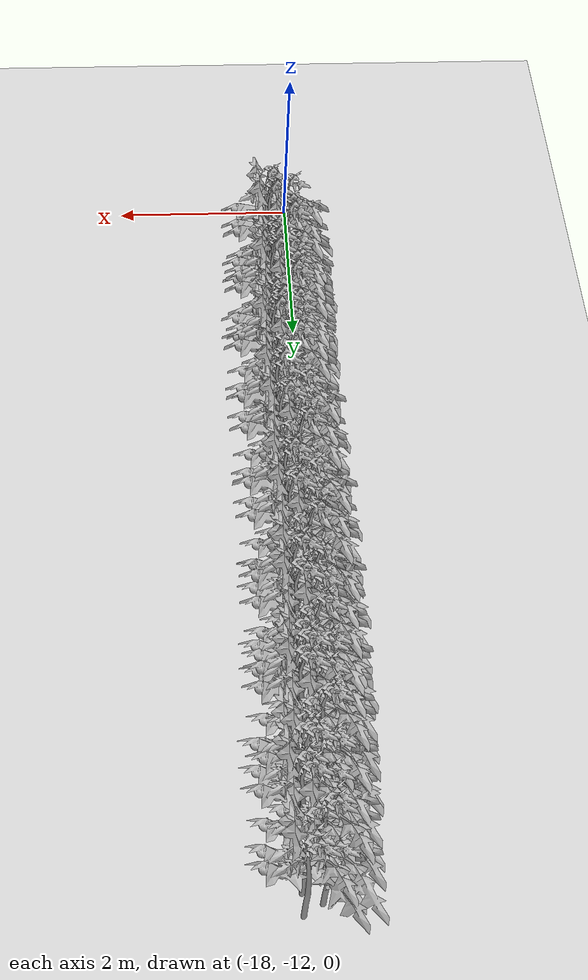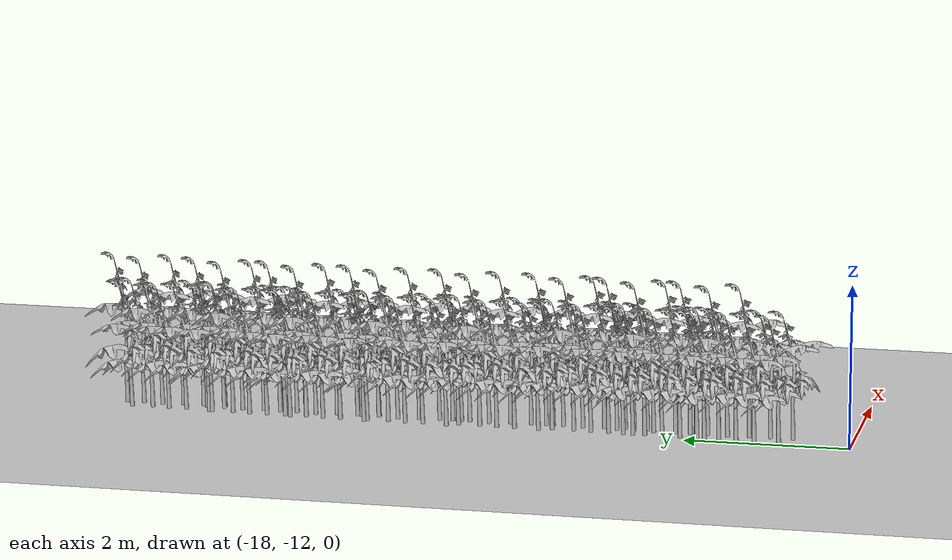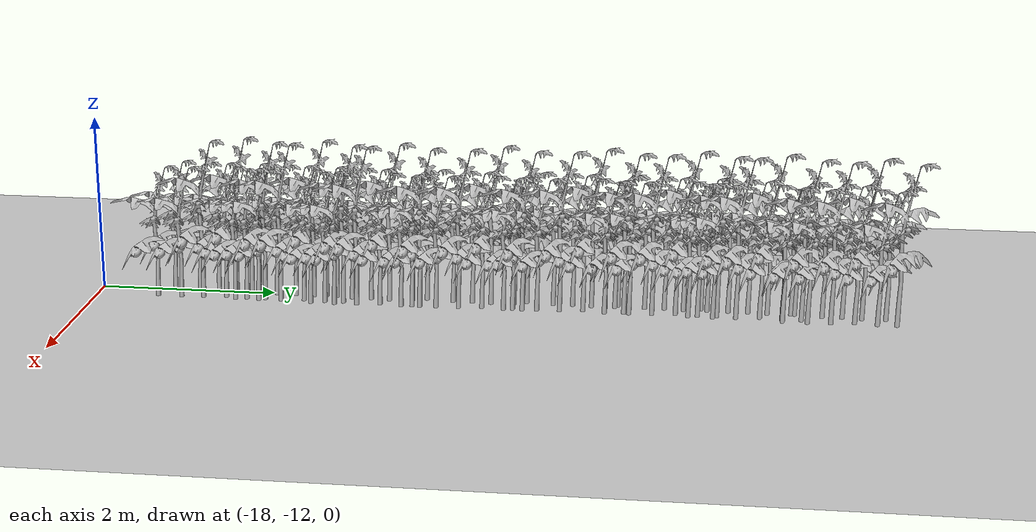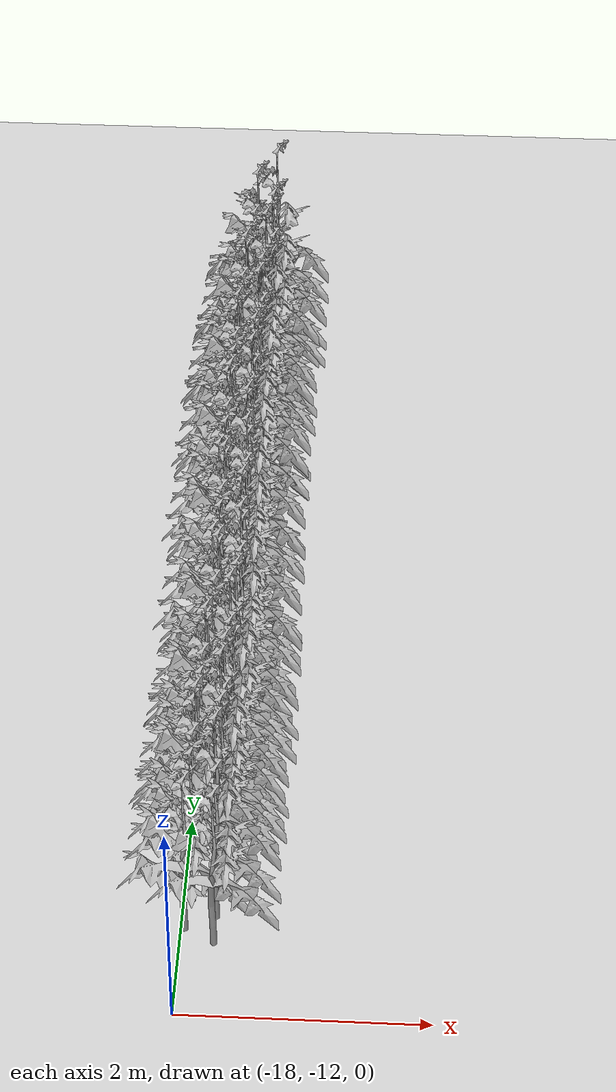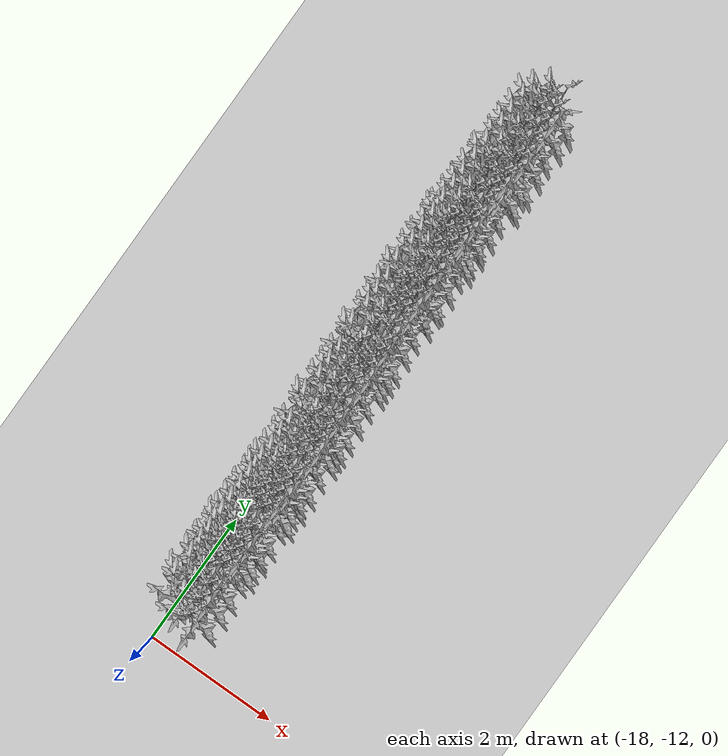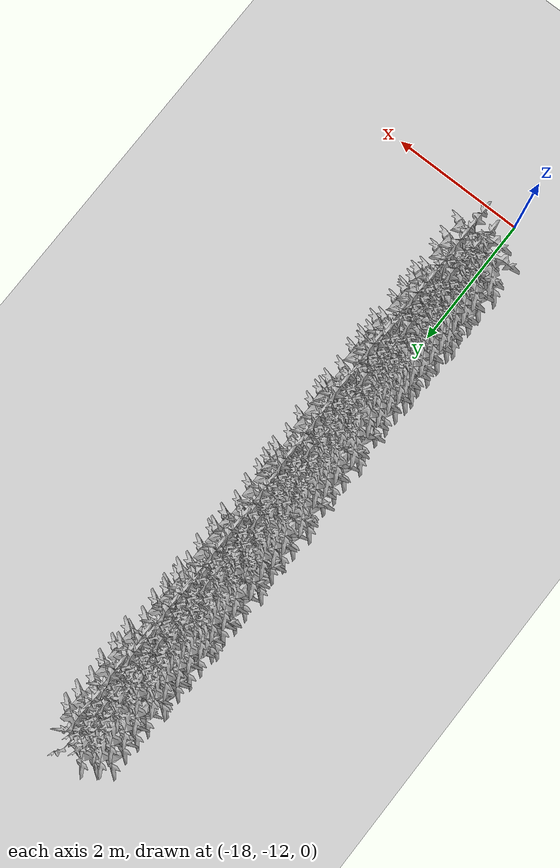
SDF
<sdf version="1.6">
 <world name="default">
  <model name="ground_plane">
   <static>1</static>
   <link name="link">
    <collision name="collision">
     <geometry><plane><normal>0 0 1</normal><size>100 100</size></plane></geometry>
     <surface>
      <contact><collide_bitmask>65535</collide_bitmask></contact>
      <friction><ode><mu>100</mu><mu2>50</mu2></ode></friction>
     </surface>
    </collision>
    <visual name="visual">
     <cast_shadows>0</cast_shadows>
     <geometry><plane><normal>0 0 1</normal><size>100 100</size></plane></geometry>
     <material>
      <script><uri>file://media/materials/scripts/gazebo.material</uri><name>Gazebo/Grey</name></script>
     </material>
    </visual>
   </link>
  </model>
  <model name="Front_Plant_1_1">
   <model name="tomato_plant_medium">
    <static>1</static>
    <link name="link">
     <collision name="collision">
      <pose>0 0 0 1.5708 -0 0</pose>
      <geometry><mesh><scale>0.5 0.5 0.5</scale><uri>model://stick/meshes/stick.dae</uri></mesh></geometry>
     </collision>
     <visual name="visual">
      <geometry>
       <mesh><scale>5e-06 5e-06 6e-06</scale><uri>model://tomato_plant_medium/meshes/tomato-plant.dae</uri></mesh>
      </geometry>
     </visual>
    </link>
    <pose>0.087453 -0.595994 0.012396 0 -0 0</pose>
   </model>
   <model name="tomato_plant_medium_0">
    <static>1</static>
    <link name="link">
     <collision name="collision">
      <pose>0 0 0 1.5708 -0 0</pose>
      <geometry><mesh><scale>0.5 0.5 0.5</scale><uri>model://stick/meshes/stick.dae</uri></mesh></geometry>
     </collision>
     <visual name="visual">
      <geometry>
       <mesh><scale>5e-06 5e-06 6e-06</scale><uri>model://tomato_plant_medium/meshes/tomato-plant.dae</uri></mesh>
      </geometry>
     </visual>
    </link>
    <pose>-0.086166 -0.251822 0.012396 0 -0 0</pose>
   </model>
   <model name="tomato_plant_medium_1">
    <static>1</static>
    <link name="link">
     <collision name="collision">
      <pose>0 0 0 1.5708 -0 0</pose>
      <geometry><mesh><scale>0.5 0.5 0.5</scale><uri>model://stick/meshes/stick.dae</uri></mesh></geometry>
     </collision>
     <visual name="visual">
      <geometry>
       <mesh><scale>5e-06 5e-06 6e-06</scale><uri>model://tomato_plant_medium/meshes/tomato-plant.dae</uri></mesh>
      </geometry>
     </visual>
    </link>
    <pose>0.080199 0.118127 0.012396 0 -0 0</pose>
   </model>
   <model name="tomato_plant_small">
    <static>1</static>
    <link name="link">
     <collision name="collision">
      <pose>0 0 0 1.5708 -0 0</pose>
      <geometry><mesh><scale>0.5 0.45 0.5</scale><uri>model://stick/meshes/stick.dae</uri></mesh></geometry>
     </collision>
     <visual name="visual">
      <geometry>
       <mesh><scale>5e-06 5e-06 5e-06</scale><uri>model://tomato_plant_small/meshes/tomato-plant.dae</uri></mesh>
      </geometry>
     </visual>
    </link>
    <pose>0.099683 -1.12011 0.012396 0 -0 0</pose>
   </model>
   <model name="tomato_plant_small_0">
    <static>1</static>
    <link name="link">
     <collision name="collision">
      <pose>0 0 0 1.5708 -0 0</pose>
      <geometry><mesh><scale>0.5 0.45 0.5</scale><uri>model://stick/meshes/stick.dae</uri></mesh></geometry>
     </collision>
     <visual name="visual">
      <geometry>
       <mesh><scale>5e-06 5e-06 5e-06</scale><uri>model://tomato_plant_small/meshes/tomato-plant.dae</uri></mesh>
      </geometry>
     </visual>
    </link>
    <pose>-0.138771 -0.983982 0.012396 0 -0 0</pose>
   </model>
   <model name="tomato_plant_small_1">
    <static>1</static>
    <link name="link">
     <collision name="collision">
      <pose>0 0 0 1.5708 -0 0</pose>
      <geometry><mesh><scale>0.5 0.45 0.5</scale><uri>model://stick/meshes/stick.dae</uri></mesh></geometry>
     </collision>
     <visual name="visual">
      <geometry>
       <mesh><scale>5e-06 5e-06 5e-06</scale><uri>model://tomato_plant_small/meshes/tomato-plant.dae</uri></mesh>
      </geometry>
     </visual>
    </link>
    <pose>0.101334 -0.848814 0.012396 0 -0 0</pose>
   </model>
   <model name="tomato_plant_small_2">
    <static>1</static>
    <link name="link">
     <collision name="collision">
      <pose>0 0 0 1.5708 -0 0</pose>
      <geometry><mesh><scale>0.5 0.45 0.5</scale><uri>model://stick/meshes/stick.dae</uri></mesh></geometry>
     </collision>
     <visual name="visual">
      <geometry>
       <mesh><scale>5e-06 5e-06 5e-06</scale><uri>model://tomato_plant_small/meshes/tomato-plant.dae</uri></mesh>
      </geometry>
     </visual>
    </link>
    <pose>-0.103369 -0.683189 0.012396 0 -0 0</pose>
   </model>
   <model name="tomato_plant_small_3">
    <static>1</static>
    <link name="link">
     <collision name="collision">
      <pose>0 0 0 1.5708 -0 0</pose>
      <geometry><mesh><scale>0.5 0.45 0.5</scale><uri>model://stick/meshes/stick.dae</uri></mesh></geometry>
     </collision>
     <visual name="visual">
      <geometry>
       <mesh><scale>5e-06 5e-06 5e-06</scale><uri>model://tomato_plant_small/meshes/tomato-plant.dae</uri></mesh>
      </geometry>
     </visual>
    </link>
    <pose>-0.104381 -0.464811 0.012396 0 -0 0</pose>
   </model>
   <model name="tomato_plant_small_4">
    <static>1</static>
    <link name="link">
     <collision name="collision">
      <pose>0 0 0 1.5708 -0 0</pose>
      <geometry><mesh><scale>0.5 0.45 0.5</scale><uri>model://stick/meshes/stick.dae</uri></mesh></geometry>
     </collision>
     <visual name="visual">
      <geometry>
       <mesh><scale>5e-06 5e-06 5e-06</scale><uri>model://tomato_plant_small/meshes/tomato-plant.dae</uri></mesh>
      </geometry>
     </visual>
    </link>
    <pose>0.055604 -0.336879 0.012396 0 -0 0</pose>
   </model>
   <model name="tomato_plant_small_5">
    <static>1</static>
    <link name="link">
     <collision name="collision">
      <pose>0 0 0 1.5708 -0 0</pose>
      <geometry><mesh><scale>0.5 0.45 0.5</scale><uri>model://stick/meshes/stick.dae</uri></mesh></geometry>
     </collision>
     <visual name="visual">
      <geometry>
       <mesh><scale>5e-06 5e-06 5e-06</scale><uri>model://tomato_plant_small/meshes/tomato-plant.dae</uri></mesh>
      </geometry>
     </visual>
    </link>
    <pose>0.085059 -0.092572 0.012396 0 -0 0</pose>
   </model>
   <model name="tomato_plant_small_6">
    <static>1</static>
    <link name="link">
     <collision name="collision">
      <pose>0 0 0 1.5708 -0 0</pose>
      <geometry><mesh><scale>0.5 0.45 0.5</scale><uri>model://stick/meshes/stick.dae</uri></mesh></geometry>
     </collision>
     <visual name="visual">
      <geometry>
       <mesh><scale>5e-06 5e-06 5e-06</scale><uri>model://tomato_plant_small/meshes/tomato-plant.dae</uri></mesh>
      </geometry>
     </visual>
    </link>
    <pose>-0.096345 0.008888 0.012396 0 -0 0</pose>
   </model>
   <static>0</static>
   <pose>-17.8231 -10.1832 0 0 -0 0</pose>
  </model>
  <model name="Front_Plant_1_2">
   <model name="tomato_plant_medium">
    <static>1</static>
    <link name="link">
     <collision name="collision">
      <pose>0 0 0 1.5708 -0 0</pose>
      <geometry><mesh><scale>0.5 0.5 0.5</scale><uri>model://stick/meshes/stick.dae</uri></mesh></geometry>
     </collision>
     <visual name="visual">
      <geometry>
       <mesh><scale>5e-06 5e-06 6e-06</scale><uri>model://tomato_plant_medium/meshes/tomato-plant.dae</uri></mesh>
      </geometry>
     </visual>
    </link>
    <pose>0.087453 -0.595994 0.012396 0 -0 0</pose>
   </model>
   <model name="tomato_plant_medium_0">
    <static>1</static>
    <link name="link">
     <collision name="collision">
      <pose>0 0 0 1.5708 -0 0</pose>
      <geometry><mesh><scale>0.5 0.5 0.5</scale><uri>model://stick/meshes/stick.dae</uri></mesh></geometry>
     </collision>
     <visual name="visual">
      <geometry>
       <mesh><scale>5e-06 5e-06 6e-06</scale><uri>model://tomato_plant_medium/meshes/tomato-plant.dae</uri></mesh>
      </geometry>
     </visual>
    </link>
    <pose>-0.086166 -0.251822 0.012396 0 -0 0</pose>
   </model>
   <model name="tomato_plant_medium_1">
    <static>1</static>
    <link name="link">
     <collision name="collision">
      <pose>0 0 0 1.5708 -0 0</pose>
      <geometry><mesh><scale>0.5 0.5 0.5</scale><uri>model://stick/meshes/stick.dae</uri></mesh></geometry>
     </collision>
     <visual name="visual">
      <geometry>
       <mesh><scale>5e-06 5e-06 6e-06</scale><uri>model://tomato_plant_medium/meshes/tomato-plant.dae</uri></mesh>
      </geometry>
     </visual>
    </link>
    <pose>0.080199 0.118127 0.012396 0 -0 0</pose>
   </model>
   <model name="tomato_plant_small">
    <static>1</static>
    <link name="link">
     <collision name="collision">
      <pose>0 0 0 1.5708 -0 0</pose>
      <geometry><mesh><scale>0.5 0.45 0.5</scale><uri>model://stick/meshes/stick.dae</uri></mesh></geometry>
     </collision>
     <visual name="visual">
      <geometry>
       <mesh><scale>5e-06 5e-06 5e-06</scale><uri>model://tomato_plant_small/meshes/tomato-plant.dae</uri></mesh>
      </geometry>
     </visual>
    </link>
    <pose>0.099683 -1.12011 0.012396 0 -0 0</pose>
   </model>
   <model name="tomato_plant_small_0">
    <static>1</static>
    <link name="link">
     <collision name="collision">
      <pose>0 0 0 1.5708 -0 0</pose>
      <geometry><mesh><scale>0.5 0.45 0.5</scale><uri>model://stick/meshes/stick.dae</uri></mesh></geometry>
     </collision>
     <visual name="visual">
      <geometry>
       <mesh><scale>5e-06 5e-06 5e-06</scale><uri>model://tomato_plant_small/meshes/tomato-plant.dae</uri></mesh>
      </geometry>
     </visual>
    </link>
    <pose>-0.138771 -0.983982 0.012396 0 -0 0</pose>
   </model>
   <model name="tomato_plant_small_1">
    <static>1</static>
    <link name="link">
     <collision name="collision">
      <pose>0 0 0 1.5708 -0 0</pose>
      <geometry><mesh><scale>0.5 0.45 0.5</scale><uri>model://stick/meshes/stick.dae</uri></mesh></geometry>
     </collision>
     <visual name="visual">
      <geometry>
       <mesh><scale>5e-06 5e-06 5e-06</scale><uri>model://tomato_plant_small/meshes/tomato-plant.dae</uri></mesh>
      </geometry>
     </visual>
    </link>
    <pose>0.101334 -0.848814 0.012396 0 -0 0</pose>
   </model>
   <model name="tomato_plant_small_2">
    <static>1</static>
    <link name="link">
     <collision name="collision">
      <pose>0 0 0 1.5708 -0 0</pose>
      <geometry><mesh><scale>0.5 0.45 0.5</scale><uri>model://stick/meshes/stick.dae</uri></mesh></geometry>
     </collision>
     <visual name="visual">
      <geometry>
       <mesh><scale>5e-06 5e-06 5e-06</scale><uri>model://tomato_plant_small/meshes/tomato-plant.dae</uri></mesh>
      </geometry>
     </visual>
    </link>
    <pose>-0.103369 -0.683189 0.012396 0 -0 0</pose>
   </model>
   <model name="tomato_plant_small_3">
    <static>1</static>
    <link name="link">
     <collision name="collision">
      <pose>0 0 0 1.5708 -0 0</pose>
      <geometry><mesh><scale>0.5 0.45 0.5</scale><uri>model://stick/meshes/stick.dae</uri></mesh></geometry>
     </collision>
     <visual name="visual">
      <geometry>
       <mesh><scale>5e-06 5e-06 5e-06</scale><uri>model://tomato_plant_small/meshes/tomato-plant.dae</uri></mesh>
      </geometry>
     </visual>
    </link>
    <pose>-0.104381 -0.464811 0.012396 0 -0 0</pose>
   </model>
   <model name="tomato_plant_small_4">
    <static>1</static>
    <link name="link">
     <collision name="collision">
      <pose>0 0 0 1.5708 -0 0</pose>
      <geometry><mesh><scale>0.5 0.45 0.5</scale><uri>model://stick/meshes/stick.dae</uri></mesh></geometry>
     </collision>
     <visual name="visual">
      <geometry>
       <mesh><scale>5e-06 5e-06 5e-06</scale><uri>model://tomato_plant_small/meshes/tomato-plant.dae</uri></mesh>
      </geometry>
     </visual>
    </link>
    <pose>0.055604 -0.336879 0.012396 0 -0 0</pose>
   </model>
   <model name="tomato_plant_small_5">
    <static>1</static>
    <link name="link">
     <collision name="collision">
      <pose>0 0 0 1.5708 -0 0</pose>
      <geometry><mesh><scale>0.5 0.45 0.5</scale><uri>model://stick/meshes/stick.dae</uri></mesh></geometry>
     </collision>
     <visual name="visual">
      <geometry>
       <mesh><scale>5e-06 5e-06 5e-06</scale><uri>model://tomato_plant_small/meshes/tomato-plant.dae</uri></mesh>
      </geometry>
     </visual>
    </link>
    <pose>0.085059 -0.092572 0.012396 0 -0 0</pose>
   </model>
   <model name="tomato_plant_small_6">
    <static>1</static>
    <link name="link">
     <collision name="collision">
      <pose>0 0 0 1.5708 -0 0</pose>
      <geometry><mesh><scale>0.5 0.45 0.5</scale><uri>model://stick/meshes/stick.dae</uri></mesh></geometry>
     </collision>
     <visual name="visual">
      <geometry>
       <mesh><scale>5e-06 5e-06 5e-06</scale><uri>model://tomato_plant_small/meshes/tomato-plant.dae</uri></mesh>
      </geometry>
     </visual>
    </link>
    <pose>-0.096345 0.008888 0.012396 0 -0 0</pose>
   </model>
   <static>0</static>
   <pose>-17.8134 -9.28486 0 0 -0 0</pose>
  </model>
  <model name="Front_Plant_1_3">
   <model name="tomato_plant_medium">
    <static>1</static>
    <link name="link">
     <collision name="collision">
      <pose>0 0 0 1.5708 -0 0</pose>
      <geometry><mesh><scale>0.5 0.5 0.5</scale><uri>model://stick/meshes/stick.dae</uri></mesh></geometry>
     </collision>
     <visual name="visual">
      <geometry>
       <mesh><scale>5e-06 5e-06 6e-06</scale><uri>model://tomato_plant_medium/meshes/tomato-plant.dae</uri></mesh>
      </geometry>
     </visual>
    </link>
    <pose>0.087453 -0.595994 0.012396 0 -0 0</pose>
   </model>
   <model name="tomato_plant_medium_0">
    <static>1</static>
    <link name="link">
     <collision name="collision">
      <pose>0 0 0 1.5708 -0 0</pose>
      <geometry><mesh><scale>0.5 0.5 0.5</scale><uri>model://stick/meshes/stick.dae</uri></mesh></geometry>
     </collision>
     <visual name="visual">
      <geometry>
       <mesh><scale>5e-06 5e-06 6e-06</scale><uri>model://tomato_plant_medium/meshes/tomato-plant.dae</uri></mesh>
      </geometry>
     </visual>
    </link>
    <pose>-0.086166 -0.251822 0.012396 0 -0 0</pose>
   </model>
   <model name="tomato_plant_medium_1">
    <static>1</static>
    <link name="link">
     <collision name="collision">
      <pose>0 0 0 1.5708 -0 0</pose>
      <geometry><mesh><scale>0.5 0.5 0.5</scale><uri>model://stick/meshes/stick.dae</uri></mesh></geometry>
     </collision>
     <visual name="visual">
      <geometry>
       <mesh><scale>5e-06 5e-06 6e-06</scale><uri>model://tomato_plant_medium/meshes/tomato-plant.dae</uri></mesh>
      </geometry>
     </visual>
    </link>
    <pose>0.080199 0.118127 0.012396 0 -0 0</pose>
   </model>
   <model name="tomato_plant_small">
    <static>1</static>
    <link name="link">
     <collision name="collision">
      <pose>0 0 0 1.5708 -0 0</pose>
      <geometry><mesh><scale>0.5 0.45 0.5</scale><uri>model://stick/meshes/stick.dae</uri></mesh></geometry>
     </collision>
     <visual name="visual">
      <geometry>
       <mesh><scale>5e-06 5e-06 5e-06</scale><uri>model://tomato_plant_small/meshes/tomato-plant.dae</uri></mesh>
      </geometry>
     </visual>
    </link>
    <pose>0.099683 -1.12011 0.012396 0 -0 0</pose>
   </model>
   <model name="tomato_plant_small_0">
    <static>1</static>
    <link name="link">
     <collision name="collision">
      <pose>0 0 0 1.5708 -0 0</pose>
      <geometry><mesh><scale>0.5 0.45 0.5</scale><uri>model://stick/meshes/stick.dae</uri></mesh></geometry>
     </collision>
     <visual name="visual">
      <geometry>
       <mesh><scale>5e-06 5e-06 5e-06</scale><uri>model://tomato_plant_small/meshes/tomato-plant.dae</uri></mesh>
      </geometry>
     </visual>
    </link>
    <pose>-0.138771 -0.983982 0.012396 0 -0 0</pose>
   </model>
   <model name="tomato_plant_small_1">
    <static>1</static>
    <link name="link">
     <collision name="collision">
      <pose>0 0 0 1.5708 -0 0</pose>
      <geometry><mesh><scale>0.5 0.45 0.5</scale><uri>model://stick/meshes/stick.dae</uri></mesh></geometry>
     </collision>
     <visual name="visual">
      <geometry>
       <mesh><scale>5e-06 5e-06 5e-06</scale><uri>model://tomato_plant_small/meshes/tomato-plant.dae</uri></mesh>
      </geometry>
     </visual>
    </link>
    <pose>0.101334 -0.848814 0.012396 0 -0 0</pose>
   </model>
   <model name="tomato_plant_small_2">
    <static>1</static>
    <link name="link">
     <collision name="collision">
      <pose>0 0 0 1.5708 -0 0</pose>
      <geometry><mesh><scale>0.5 0.45 0.5</scale><uri>model://stick/meshes/stick.dae</uri></mesh></geometry>
     </collision>
     <visual name="visual">
      <geometry>
       <mesh><scale>5e-06 5e-06 5e-06</scale><uri>model://tomato_plant_small/meshes/tomato-plant.dae</uri></mesh>
      </geometry>
     </visual>
    </link>
    <pose>-0.103369 -0.683189 0.012396 0 -0 0</pose>
   </model>
   <model name="tomato_plant_small_3">
    <static>1</static>
    <link name="link">
     <collision name="collision">
      <pose>0 0 0 1.5708 -0 0</pose>
      <geometry><mesh><scale>0.5 0.45 0.5</scale><uri>model://stick/meshes/stick.dae</uri></mesh></geometry>
     </collision>
     <visual name="visual">
      <geometry>
       <mesh><scale>5e-06 5e-06 5e-06</scale><uri>model://tomato_plant_small/meshes/tomato-plant.dae</uri></mesh>
      </geometry>
     </visual>
    </link>
    <pose>-0.104381 -0.464811 0.012396 0 -0 0</pose>
   </model>
   <model name="tomato_plant_small_4">
    <static>1</static>
    <link name="link">
     <collision name="collision">
      <pose>0 0 0 1.5708 -0 0</pose>
      <geometry><mesh><scale>0.5 0.45 0.5</scale><uri>model://stick/meshes/stick.dae</uri></mesh></geometry>
     </collision>
     <visual name="visual">
      <geometry>
       <mesh><scale>5e-06 5e-06 5e-06</scale><uri>model://tomato_plant_small/meshes/tomato-plant.dae</uri></mesh>
      </geometry>
     </visual>
    </link>
    <pose>0.055604 -0.336879 0.012396 0 -0 0</pose>
   </model>
   <model name="tomato_plant_small_5">
    <static>1</static>
    <link name="link">
     <collision name="collision">
      <pose>0 0 0 1.5708 -0 0</pose>
      <geometry><mesh><scale>0.5 0.45 0.5</scale><uri>model://stick/meshes/stick.dae</uri></mesh></geometry>
     </collision>
     <visual name="visual">
      <geometry>
       <mesh><scale>5e-06 5e-06 5e-06</scale><uri>model://tomato_plant_small/meshes/tomato-plant.dae</uri></mesh>
      </geometry>
     </visual>
    </link>
    <pose>0.085059 -0.092572 0.012396 0 -0 0</pose>
   </model>
   <model name="tomato_plant_small_6">
    <static>1</static>
    <link name="link">
     <collision name="collision">
      <pose>0 0 0 1.5708 -0 0</pose>
      <geometry><mesh><scale>0.5 0.45 0.5</scale><uri>model://stick/meshes/stick.dae</uri></mesh></geometry>
     </collision>
     <visual name="visual">
      <geometry>
       <mesh><scale>5e-06 5e-06 5e-06</scale><uri>model://tomato_plant_small/meshes/tomato-plant.dae</uri></mesh>
      </geometry>
     </visual>
    </link>
    <pose>-0.096345 0.008888 0.012396 0 -0 0</pose>
   </model>
   <static>0</static>
   <pose>-17.7816 -8.41124 0 0 -0 0</pose>
  </model>
  <model name="Front_Plant_1_4">
   <model name="tomato_plant_medium">
    <static>1</static>
    <link name="link">
     <collision name="collision">
      <pose>0 0 0 1.5708 -0 0</pose>
      <geometry><mesh><scale>0.5 0.5 0.5</scale><uri>model://stick/meshes/stick.dae</uri></mesh></geometry>
     </collision>
     <visual name="visual">
      <geometry>
       <mesh><scale>5e-06 5e-06 6e-06</scale><uri>model://tomato_plant_medium/meshes/tomato-plant.dae</uri></mesh>
      </geometry>
     </visual>
    </link>
    <pose>0.087453 -0.595994 0.012396 0 -0 0</pose>
   </model>
   <model name="tomato_plant_medium_0">
    <static>1</static>
    <link name="link">
     <collision name="collision">
      <pose>0 0 0 1.5708 -0 0</pose>
      <geometry><mesh><scale>0.5 0.5 0.5</scale><uri>model://stick/meshes/stick.dae</uri></mesh></geometry>
     </collision>
     <visual name="visual">
      <geometry>
       <mesh><scale>5e-06 5e-06 6e-06</scale><uri>model://tomato_plant_medium/meshes/tomato-plant.dae</uri></mesh>
      </geometry>
     </visual>
    </link>
    <pose>-0.086166 -0.251822 0.012396 0 -0 0</pose>
   </model>
   <model name="tomato_plant_medium_1">
    <static>1</static>
    <link name="link">
     <collision name="collision">
      <pose>0 0 0 1.5708 -0 0</pose>
      <geometry><mesh><scale>0.5 0.5 0.5</scale><uri>model://stick/meshes/stick.dae</uri></mesh></geometry>
     </collision>
     <visual name="visual">
      <geometry>
       <mesh><scale>5e-06 5e-06 6e-06</scale><uri>model://tomato_plant_medium/meshes/tomato-plant.dae</uri></mesh>
      </geometry>
     </visual>
    </link>
    <pose>0.080199 0.118127 0.012396 0 -0 0</pose>
   </model>
   <model name="tomato_plant_small">
    <static>1</static>
    <link name="link">
     <collision name="collision">
      <pose>0 0 0 1.5708 -0 0</pose>
      <geometry><mesh><scale>0.5 0.45 0.5</scale><uri>model://stick/meshes/stick.dae</uri></mesh></geometry>
     </collision>
     <visual name="visual">
      <geometry>
       <mesh><scale>5e-06 5e-06 5e-06</scale><uri>model://tomato_plant_small/meshes/tomato-plant.dae</uri></mesh>
      </geometry>
     </visual>
    </link>
    <pose>0.099683 -1.12011 0.012396 0 -0 0</pose>
   </model>
   <model name="tomato_plant_small_0">
    <static>1</static>
    <link name="link">
     <collision name="collision">
      <pose>0 0 0 1.5708 -0 0</pose>
      <geometry><mesh><scale>0.5 0.45 0.5</scale><uri>model://stick/meshes/stick.dae</uri></mesh></geometry>
     </collision>
     <visual name="visual">
      <geometry>
       <mesh><scale>5e-06 5e-06 5e-06</scale><uri>model://tomato_plant_small/meshes/tomato-plant.dae</uri></mesh>
      </geometry>
     </visual>
    </link>
    <pose>-0.138771 -0.983982 0.012396 0 -0 0</pose>
   </model>
   <model name="tomato_plant_small_1">
    <static>1</static>
    <link name="link">
     <collision name="collision">
      <pose>0 0 0 1.5708 -0 0</pose>
      <geometry><mesh><scale>0.5 0.45 0.5</scale><uri>model://stick/meshes/stick.dae</uri></mesh></geometry>
     </collision>
     <visual name="visual">
      <geometry>
       <mesh><scale>5e-06 5e-06 5e-06</scale><uri>model://tomato_plant_small/meshes/tomato-plant.dae</uri></mesh>
      </geometry>
     </visual>
    </link>
    <pose>0.101334 -0.848814 0.012396 0 -0 0</pose>
   </model>
   <model name="tomato_plant_small_2">
    <static>1</static>
    <link name="link">
     <collision name="collision">
      <pose>0 0 0 1.5708 -0 0</pose>
      <geometry><mesh><scale>0.5 0.45 0.5</scale><uri>model://stick/meshes/stick.dae</uri></mesh></geometry>
     </collision>
     <visual name="visual">
      <geometry>
       <mesh><scale>5e-06 5e-06 5e-06</scale><uri>model://tomato_plant_small/meshes/tomato-plant.dae</uri></mesh>
      </geometry>
     </visual>
    </link>
    <pose>-0.103369 -0.683189 0.012396 0 -0 0</pose>
   </model>
   <model name="tomato_plant_small_3">
    <static>1</static>
    <link name="link">
     <collision name="collision">
      <pose>0 0 0 1.5708 -0 0</pose>
      <geometry><mesh><scale>0.5 0.45 0.5</scale><uri>model://stick/meshes/stick.dae</uri></mesh></geometry>
     </collision>
     <visual name="visual">
      <geometry>
       <mesh><scale>5e-06 5e-06 5e-06</scale><uri>model://tomato_plant_small/meshes/tomato-plant.dae</uri></mesh>
      </geometry>
     </visual>
    </link>
    <pose>-0.104381 -0.464811 0.012396 0 -0 0</pose>
   </model>
   <model name="tomato_plant_small_4">
    <static>1</static>
    <link name="link">
     <collision name="collision">
      <pose>0 0 0 1.5708 -0 0</pose>
      <geometry><mesh><scale>0.5 0.45 0.5</scale><uri>model://stick/meshes/stick.dae</uri></mesh></geometry>
     </collision>
     <visual name="visual">
      <geometry>
       <mesh><scale>5e-06 5e-06 5e-06</scale><uri>model://tomato_plant_small/meshes/tomato-plant.dae</uri></mesh>
      </geometry>
     </visual>
    </link>
    <pose>0.055604 -0.336879 0.012396 0 -0 0</pose>
   </model>
   <model name="tomato_plant_small_5">
    <static>1</static>
    <link name="link">
     <collision name="collision">
      <pose>0 0 0 1.5708 -0 0</pose>
      <geometry><mesh><scale>0.5 0.45 0.5</scale><uri>model://stick/meshes/stick.dae</uri></mesh></geometry>
     </collision>
     <visual name="visual">
      <geometry>
       <mesh><scale>5e-06 5e-06 5e-06</scale><uri>model://tomato_plant_small/meshes/tomato-plant.dae</uri></mesh>
      </geometry>
     </visual>
    </link>
    <pose>0.085059 -0.092572 0.012396 0 -0 0</pose>
   </model>
   <model name="tomato_plant_small_6">
    <static>1</static>
    <link name="link">
     <collision name="collision">
      <pose>0 0 0 1.5708 -0 0</pose>
      <geometry><mesh><scale>0.5 0.45 0.5</scale><uri>model://stick/meshes/stick.dae</uri></mesh></geometry>
     </collision>
     <visual name="visual">
      <geometry>
       <mesh><scale>5e-06 5e-06 5e-06</scale><uri>model://tomato_plant_small/meshes/tomato-plant.dae</uri></mesh>
      </geometry>
     </visual>
    </link>
    <pose>-0.096345 0.008888 0.012396 0 -0 0</pose>
   </model>
   <static>0</static>
   <pose>-17.8078 -7.26083 0 0 -0 0</pose>
  </model>
  <model name="Front_Plant_1_5">
   <model name="tomato_plant_medium">
    <static>1</static>
    <link name="link">
     <collision name="collision">
      <pose>0 0 0 1.5708 -0 0</pose>
      <geometry><mesh><scale>0.5 0.5 0.5</scale><uri>model://stick/meshes/stick.dae</uri></mesh></geometry>
     </collision>
     <visual name="visual">
      <geometry>
       <mesh><scale>5e-06 5e-06 6e-06</scale><uri>model://tomato_plant_medium/meshes/tomato-plant.dae</uri></mesh>
      </geometry>
     </visual>
    </link>
    <pose>0.087453 -0.595994 0.012396 0 -0 0</pose>
   </model>
   <model name="tomato_plant_medium_0">
    <static>1</static>
    <link name="link">
     <collision name="collision">
      <pose>0 0 0 1.5708 -0 0</pose>
      <geometry><mesh><scale>0.5 0.5 0.5</scale><uri>model://stick/meshes/stick.dae</uri></mesh></geometry>
     </collision>
     <visual name="visual">
      <geometry>
       <mesh><scale>5e-06 5e-06 6e-06</scale><uri>model://tomato_plant_medium/meshes/tomato-plant.dae</uri></mesh>
      </geometry>
     </visual>
    </link>
    <pose>-0.086166 -0.251822 0.012396 0 -0 0</pose>
   </model>
   <model name="tomato_plant_medium_1">
    <static>1</static>
    <link name="link">
     <collision name="collision">
      <pose>0 0 0 1.5708 -0 0</pose>
      <geometry><mesh><scale>0.5 0.5 0.5</scale><uri>model://stick/meshes/stick.dae</uri></mesh></geometry>
     </collision>
     <visual name="visual">
      <geometry>
       <mesh><scale>5e-06 5e-06 6e-06</scale><uri>model://tomato_plant_medium/meshes/tomato-plant.dae</uri></mesh>
      </geometry>
     </visual>
    </link>
    <pose>0.080199 0.118127 0.012396 0 -0 0</pose>
   </model>
   <model name="tomato_plant_small">
    <static>1</static>
    <link name="link">
     <collision name="collision">
      <pose>0 0 0 1.5708 -0 0</pose>
      <geometry><mesh><scale>0.5 0.45 0.5</scale><uri>model://stick/meshes/stick.dae</uri></mesh></geometry>
     </collision>
     <visual name="visual">
      <geometry>
       <mesh><scale>5e-06 5e-06 5e-06</scale><uri>model://tomato_plant_small/meshes/tomato-plant.dae</uri></mesh>
      </geometry>
     </visual>
    </link>
    <pose>0.099683 -1.12011 0.012396 0 -0 0</pose>
   </model>
   <model name="tomato_plant_small_0">
    <static>1</static>
    <link name="link">
     <collision name="collision">
      <pose>0 0 0 1.5708 -0 0</pose>
      <geometry><mesh><scale>0.5 0.45 0.5</scale><uri>model://stick/meshes/stick.dae</uri></mesh></geometry>
     </collision>
     <visual name="visual">
      <geometry>
       <mesh><scale>5e-06 5e-06 5e-06</scale><uri>model://tomato_plant_small/meshes/tomato-plant.dae</uri></mesh>
      </geometry>
     </visual>
    </link>
    <pose>-0.138771 -0.983982 0.012396 0 -0 0</pose>
   </model>
   <model name="tomato_plant_small_1">
    <static>1</static>
    <link name="link">
     <collision name="collision">
      <pose>0 0 0 1.5708 -0 0</pose>
      <geometry><mesh><scale>0.5 0.45 0.5</scale><uri>model://stick/meshes/stick.dae</uri></mesh></geometry>
     </collision>
     <visual name="visual">
      <geometry>
       <mesh><scale>5e-06 5e-06 5e-06</scale><uri>model://tomato_plant_small/meshes/tomato-plant.dae</uri></mesh>
      </geometry>
     </visual>
    </link>
    <pose>0.101334 -0.848814 0.012396 0 -0 0</pose>
   </model>
   <model name="tomato_plant_small_2">
    <static>1</static>
    <link name="link">
     <collision name="collision">
      <pose>0 0 0 1.5708 -0 0</pose>
      <geometry><mesh><scale>0.5 0.45 0.5</scale><uri>model://stick/meshes/stick.dae</uri></mesh></geometry>
     </collision>
     <visual name="visual">
      <geometry>
       <mesh><scale>5e-06 5e-06 5e-06</scale><uri>model://tomato_plant_small/meshes/tomato-plant.dae</uri></mesh>
      </geometry>
     </visual>
    </link>
    <pose>-0.103369 -0.683189 0.012396 0 -0 0</pose>
   </model>
   <model name="tomato_plant_small_3">
    <static>1</static>
    <link name="link">
     <collision name="collision">
      <pose>0 0 0 1.5708 -0 0</pose>
      <geometry><mesh><scale>0.5 0.45 0.5</scale><uri>model://stick/meshes/stick.dae</uri></mesh></geometry>
     </collision>
     <visual name="visual">
      <geometry>
       <mesh><scale>5e-06 5e-06 5e-06</scale><uri>model://tomato_plant_small/meshes/tomato-plant.dae</uri></mesh>
      </geometry>
     </visual>
    </link>
    <pose>-0.104381 -0.464811 0.012396 0 -0 0</pose>
   </model>
   <model name="tomato_plant_small_4">
    <static>1</static>
    <link name="link">
     <collision name="collision">
      <pose>0 0 0 1.5708 -0 0</pose>
      <geometry><mesh><scale>0.5 0.45 0.5</scale><uri>model://stick/meshes/stick.dae</uri></mesh></geometry>
     </collision>
     <visual name="visual">
      <geometry>
       <mesh><scale>5e-06 5e-06 5e-06</scale><uri>model://tomato_plant_small/meshes/tomato-plant.dae</uri></mesh>
      </geometry>
     </visual>
    </link>
    <pose>0.055604 -0.336879 0.012396 0 -0 0</pose>
   </model>
   <model name="tomato_plant_small_5">
    <static>1</static>
    <link name="link">
     <collision name="collision">
      <pose>0 0 0 1.5708 -0 0</pose>
      <geometry><mesh><scale>0.5 0.45 0.5</scale><uri>model://stick/meshes/stick.dae</uri></mesh></geometry>
     </collision>
     <visual name="visual">
      <geometry>
       <mesh><scale>5e-06 5e-06 5e-06</scale><uri>model://tomato_plant_small/meshes/tomato-plant.dae</uri></mesh>
      </geometry>
     </visual>
    </link>
    <pose>0.085059 -0.092572 0.012396 0 -0 0</pose>
   </model>
   <model name="tomato_plant_small_6">
    <static>1</static>
    <link name="link">
     <collision name="collision">
      <pose>0 0 0 1.5708 -0 0</pose>
      <geometry><mesh><scale>0.5 0.45 0.5</scale><uri>model://stick/meshes/stick.dae</uri></mesh></geometry>
     </collision>
     <visual name="visual">
      <geometry>
       <mesh><scale>5e-06 5e-06 5e-06</scale><uri>model://tomato_plant_small/meshes/tomato-plant.dae</uri></mesh>
      </geometry>
     </visual>
    </link>
    <pose>-0.096345 0.008888 0.012396 0 -0 0</pose>
   </model>
   <static>0</static>
   <pose>-17.8369 -6.13198 0 0 -0 0</pose>
  </model>
  <model name="Front_Plant_1_6">
   <model name="tomato_plant_medium">
    <static>1</static>
    <link name="link">
     <collision name="collision">
      <pose>0 0 0 1.5708 -0 0</pose>
      <geometry><mesh><scale>0.5 0.5 0.5</scale><uri>model://stick/meshes/stick.dae</uri></mesh></geometry>
     </collision>
     <visual name="visual">
      <geometry>
       <mesh><scale>5e-06 5e-06 6e-06</scale><uri>model://tomato_plant_medium/meshes/tomato-plant.dae</uri></mesh>
      </geometry>
     </visual>
    </link>
    <pose>0.087453 -0.595994 0.012396 0 -0 0</pose>
   </model>
   <model name="tomato_plant_medium_0">
    <static>1</static>
    <link name="link">
     <collision name="collision">
      <pose>0 0 0 1.5708 -0 0</pose>
      <geometry><mesh><scale>0.5 0.5 0.5</scale><uri>model://stick/meshes/stick.dae</uri></mesh></geometry>
     </collision>
     <visual name="visual">
      <geometry>
       <mesh><scale>5e-06 5e-06 6e-06</scale><uri>model://tomato_plant_medium/meshes/tomato-plant.dae</uri></mesh>
      </geometry>
     </visual>
    </link>
    <pose>-0.086166 -0.251822 0.012396 0 -0 0</pose>
   </model>
   <model name="tomato_plant_medium_1">
    <static>1</static>
    <link name="link">
     <collision name="collision">
      <pose>0 0 0 1.5708 -0 0</pose>
      <geometry><mesh><scale>0.5 0.5 0.5</scale><uri>model://stick/meshes/stick.dae</uri></mesh></geometry>
     </collision>
     <visual name="visual">
      <geometry>
       <mesh><scale>5e-06 5e-06 6e-06</scale><uri>model://tomato_plant_medium/meshes/tomato-plant.dae</uri></mesh>
      </geometry>
     </visual>
    </link>
    <pose>0.080199 0.118127 0.012396 0 -0 0</pose>
   </model>
   <model name="tomato_plant_small">
    <static>1</static>
    <link name="link">
     <collision name="collision">
      <pose>0 0 0 1.5708 -0 0</pose>
      <geometry><mesh><scale>0.5 0.45 0.5</scale><uri>model://stick/meshes/stick.dae</uri></mesh></geometry>
     </collision>
     <visual name="visual">
      <geometry>
       <mesh><scale>5e-06 5e-06 5e-06</scale><uri>model://tomato_plant_small/meshes/tomato-plant.dae</uri></mesh>
      </geometry>
     </visual>
    </link>
    <pose>0.099683 -1.12011 0.012396 0 -0 0</pose>
   </model>
   <model name="tomato_plant_small_0">
    <static>1</static>
    <link name="link">
     <collision name="collision">
      <pose>0 0 0 1.5708 -0 0</pose>
      <geometry><mesh><scale>0.5 0.45 0.5</scale><uri>model://stick/meshes/stick.dae</uri></mesh></geometry>
     </collision>
     <visual name="visual">
      <geometry>
       <mesh><scale>5e-06 5e-06 5e-06</scale><uri>model://tomato_plant_small/meshes/tomato-plant.dae</uri></mesh>
      </geometry>
     </visual>
    </link>
    <pose>-0.138771 -0.983982 0.012396 0 -0 0</pose>
   </model>
   <model name="tomato_plant_small_1">
    <static>1</static>
    <link name="link">
     <collision name="collision">
      <pose>0 0 0 1.5708 -0 0</pose>
      <geometry><mesh><scale>0.5 0.45 0.5</scale><uri>model://stick/meshes/stick.dae</uri></mesh></geometry>
     </collision>
     <visual name="visual">
      <geometry>
       <mesh><scale>5e-06 5e-06 5e-06</scale><uri>model://tomato_plant_small/meshes/tomato-plant.dae</uri></mesh>
      </geometry>
     </visual>
    </link>
    <pose>0.101334 -0.848814 0.012396 0 -0 0</pose>
   </model>
   <model name="tomato_plant_small_2">
    <static>1</static>
    <link name="link">
     <collision name="collision">
      <pose>0 0 0 1.5708 -0 0</pose>
      <geometry><mesh><scale>0.5 0.45 0.5</scale><uri>model://stick/meshes/stick.dae</uri></mesh></geometry>
     </collision>
     <visual name="visual">
      <geometry>
       <mesh><scale>5e-06 5e-06 5e-06</scale><uri>model://tomato_plant_small/meshes/tomato-plant.dae</uri></mesh>
      </geometry>
     </visual>
    </link>
    <pose>-0.103369 -0.683189 0.012396 0 -0 0</pose>
   </model>
   <model name="tomato_plant_small_3">
    <static>1</static>
    <link name="link">
     <collision name="collision">
      <pose>0 0 0 1.5708 -0 0</pose>
      <geometry><mesh><scale>0.5 0.45 0.5</scale><uri>model://stick/meshes/stick.dae</uri></mesh></geometry>
     </collision>
     <visual name="visual">
      <geometry>
       <mesh><scale>5e-06 5e-06 5e-06</scale><uri>model://tomato_plant_small/meshes/tomato-plant.dae</uri></mesh>
      </geometry>
     </visual>
    </link>
    <pose>-0.104381 -0.464811 0.012396 0 -0 0</pose>
   </model>
   <model name="tomato_plant_small_4">
    <static>1</static>
    <link name="link">
     <collision name="collision">
      <pose>0 0 0 1.5708 -0 0</pose>
      <geometry><mesh><scale>0.5 0.45 0.5</scale><uri>model://stick/meshes/stick.dae</uri></mesh></geometry>
     </collision>
     <visual name="visual">
      <geometry>
       <mesh><scale>5e-06 5e-06 5e-06</scale><uri>model://tomato_plant_small/meshes/tomato-plant.dae</uri></mesh>
      </geometry>
     </visual>
    </link>
    <pose>0.055604 -0.336879 0.012396 0 -0 0</pose>
   </model>
   <model name="tomato_plant_small_5">
    <static>1</static>
    <link name="link">
     <collision name="collision">
      <pose>0 0 0 1.5708 -0 0</pose>
      <geometry><mesh><scale>0.5 0.45 0.5</scale><uri>model://stick/meshes/stick.dae</uri></mesh></geometry>
     </collision>
     <visual name="visual">
      <geometry>
       <mesh><scale>5e-06 5e-06 5e-06</scale><uri>model://tomato_plant_small/meshes/tomato-plant.dae</uri></mesh>
      </geometry>
     </visual>
    </link>
    <pose>0.085059 -0.092572 0.012396 0 -0 0</pose>
   </model>
   <model name="tomato_plant_small_6">
    <static>1</static>
    <link name="link">
     <collision name="collision">
      <pose>0 0 0 1.5708 -0 0</pose>
      <geometry><mesh><scale>0.5 0.45 0.5</scale><uri>model://stick/meshes/stick.dae</uri></mesh></geometry>
     </collision>
     <visual name="visual">
      <geometry>
       <mesh><scale>5e-06 5e-06 5e-06</scale><uri>model://tomato_plant_small/meshes/tomato-plant.dae</uri></mesh>
      </geometry>
     </visual>
    </link>
    <pose>-0.096345 0.008888 0.012396 0 -0 0</pose>
   </model>
   <static>0</static>
   <pose>-17.8394 -5.10735 0 0 -0 0</pose>
  </model>
  <model name="Front_Plant_1_7">
   <model name="tomato_plant_medium">
    <static>1</static>
    <link name="link">
     <collision name="collision">
      <pose>0 0 0 1.5708 -0 0</pose>
      <geometry><mesh><scale>0.5 0.5 0.5</scale><uri>model://stick/meshes/stick.dae</uri></mesh></geometry>
     </collision>
     <visual name="visual">
      <geometry>
       <mesh><scale>5e-06 5e-06 6e-06</scale><uri>model://tomato_plant_medium/meshes/tomato-plant.dae</uri></mesh>
      </geometry>
     </visual>
    </link>
    <pose>0.087453 -0.595994 0.012396 0 -0 0</pose>
   </model>
   <model name="tomato_plant_medium_0">
    <static>1</static>
    <link name="link">
     <collision name="collision">
      <pose>0 0 0 1.5708 -0 0</pose>
      <geometry><mesh><scale>0.5 0.5 0.5</scale><uri>model://stick/meshes/stick.dae</uri></mesh></geometry>
     </collision>
     <visual name="visual">
      <geometry>
       <mesh><scale>5e-06 5e-06 6e-06</scale><uri>model://tomato_plant_medium/meshes/tomato-plant.dae</uri></mesh>
      </geometry>
     </visual>
    </link>
    <pose>-0.086166 -0.251822 0.012396 0 -0 0</pose>
   </model>
   <model name="tomato_plant_medium_1">
    <static>1</static>
    <link name="link">
     <collision name="collision">
      <pose>0 0 0 1.5708 -0 0</pose>
      <geometry><mesh><scale>0.5 0.5 0.5</scale><uri>model://stick/meshes/stick.dae</uri></mesh></geometry>
     </collision>
     <visual name="visual">
      <geometry>
       <mesh><scale>5e-06 5e-06 6e-06</scale><uri>model://tomato_plant_medium/meshes/tomato-plant.dae</uri></mesh>
      </geometry>
     </visual>
    </link>
    <pose>0.080199 0.118127 0.012396 0 -0 0</pose>
   </model>
   <model name="tomato_plant_small">
    <static>1</static>
    <link name="link">
     <collision name="collision">
      <pose>0 0 0 1.5708 -0 0</pose>
      <geometry><mesh><scale>0.5 0.45 0.5</scale><uri>model://stick/meshes/stick.dae</uri></mesh></geometry>
     </collision>
     <visual name="visual">
      <geometry>
       <mesh><scale>5e-06 5e-06 5e-06</scale><uri>model://tomato_plant_small/meshes/tomato-plant.dae</uri></mesh>
      </geometry>
     </visual>
    </link>
    <pose>0.099683 -1.12011 0.012396 0 -0 0</pose>
   </model>
   <model name="tomato_plant_small_0">
    <static>1</static>
    <link name="link">
     <collision name="collision">
      <pose>0 0 0 1.5708 -0 0</pose>
      <geometry><mesh><scale>0.5 0.45 0.5</scale><uri>model://stick/meshes/stick.dae</uri></mesh></geometry>
     </collision>
     <visual name="visual">
      <geometry>
       <mesh><scale>5e-06 5e-06 5e-06</scale><uri>model://tomato_plant_small/meshes/tomato-plant.dae</uri></mesh>
      </geometry>
     </visual>
    </link>
    <pose>-0.138771 -0.983982 0.012396 0 -0 0</pose>
   </model>
   <model name="tomato_plant_small_1">
    <static>1</static>
    <link name="link">
     <collision name="collision">
      <pose>0 0 0 1.5708 -0 0</pose>
      <geometry><mesh><scale>0.5 0.45 0.5</scale><uri>model://stick/meshes/stick.dae</uri></mesh></geometry>
     </collision>
     <visual name="visual">
      <geometry>
       <mesh><scale>5e-06 5e-06 5e-06</scale><uri>model://tomato_plant_small/meshes/tomato-plant.dae</uri></mesh>
      </geometry>
     </visual>
    </link>
    <pose>0.101334 -0.848814 0.012396 0 -0 0</pose>
   </model>
   <model name="tomato_plant_small_2">
    <static>1</static>
    <link name="link">
     <collision name="collision">
      <pose>0 0 0 1.5708 -0 0</pose>
      <geometry><mesh><scale>0.5 0.45 0.5</scale><uri>model://stick/meshes/stick.dae</uri></mesh></geometry>
     </collision>
     <visual name="visual">
      <geometry>
       <mesh><scale>5e-06 5e-06 5e-06</scale><uri>model://tomato_plant_small/meshes/tomato-plant.dae</uri></mesh>
      </geometry>
     </visual>
    </link>
    <pose>-0.103369 -0.683189 0.012396 0 -0 0</pose>
   </model>
   <model name="tomato_plant_small_3">
    <static>1</static>
    <link name="link">
     <collision name="collision">
      <pose>0 0 0 1.5708 -0 0</pose>
      <geometry><mesh><scale>0.5 0.45 0.5</scale><uri>model://stick/meshes/stick.dae</uri></mesh></geometry>
     </collision>
     <visual name="visual">
      <geometry>
       <mesh><scale>5e-06 5e-06 5e-06</scale><uri>model://tomato_plant_small/meshes/tomato-plant.dae</uri></mesh>
      </geometry>
     </visual>
    </link>
    <pose>-0.104381 -0.464811 0.012396 0 -0 0</pose>
   </model>
   <model name="tomato_plant_small_4">
    <static>1</static>
    <link name="link">
     <collision name="collision">
      <pose>0 0 0 1.5708 -0 0</pose>
      <geometry><mesh><scale>0.5 0.45 0.5</scale><uri>model://stick/meshes/stick.dae</uri></mesh></geometry>
     </collision>
     <visual name="visual">
      <geometry>
       <mesh><scale>5e-06 5e-06 5e-06</scale><uri>model://tomato_plant_small/meshes/tomato-plant.dae</uri></mesh>
      </geometry>
     </visual>
    </link>
    <pose>0.055604 -0.336879 0.012396 0 -0 0</pose>
   </model>
   <model name="tomato_plant_small_5">
    <static>1</static>
    <link name="link">
     <collision name="collision">
      <pose>0 0 0 1.5708 -0 0</pose>
      <geometry><mesh><scale>0.5 0.45 0.5</scale><uri>model://stick/meshes/stick.dae</uri></mesh></geometry>
     </collision>
     <visual name="visual">
      <geometry>
       <mesh><scale>5e-06 5e-06 5e-06</scale><uri>model://tomato_plant_small/meshes/tomato-plant.dae</uri></mesh>
      </geometry>
     </visual>
    </link>
    <pose>0.085059 -0.092572 0.012396 0 -0 0</pose>
   </model>
   <model name="tomato_plant_small_6">
    <static>1</static>
    <link name="link">
     <collision name="collision">
      <pose>0 0 0 1.5708 -0 0</pose>
      <geometry><mesh><scale>0.5 0.45 0.5</scale><uri>model://stick/meshes/stick.dae</uri></mesh></geometry>
     </collision>
     <visual name="visual">
      <geometry>
       <mesh><scale>5e-06 5e-06 5e-06</scale><uri>model://tomato_plant_small/meshes/tomato-plant.dae</uri></mesh>
      </geometry>
     </visual>
    </link>
    <pose>-0.096345 0.008888 0.012396 0 -0 0</pose>
   </model>
   <static>0</static>
   <pose>-17.8276 -4.18285 0 0 -0 0</pose>
  </model>
  <model name="Front_Plant_1_8">
   <model name="tomato_plant_medium">
    <static>1</static>
    <link name="link">
     <collision name="collision">
      <pose>0 0 0 1.5708 -0 0</pose>
      <geometry><mesh><scale>0.5 0.5 0.5</scale><uri>model://stick/meshes/stick.dae</uri></mesh></geometry>
     </collision>
     <visual name="visual">
      <geometry>
       <mesh><scale>5e-06 5e-06 6e-06</scale><uri>model://tomato_plant_medium/meshes/tomato-plant.dae</uri></mesh>
      </geometry>
     </visual>
    </link>
    <pose>0.087453 -0.595994 0.012396 0 -0 0</pose>
   </model>
   <model name="tomato_plant_medium_0">
    <static>1</static>
    <link name="link">
     <collision name="collision">
      <pose>0 0 0 1.5708 -0 0</pose>
      <geometry><mesh><scale>0.5 0.5 0.5</scale><uri>model://stick/meshes/stick.dae</uri></mesh></geometry>
     </collision>
     <visual name="visual">
      <geometry>
       <mesh><scale>5e-06 5e-06 6e-06</scale><uri>model://tomato_plant_medium/meshes/tomato-plant.dae</uri></mesh>
      </geometry>
     </visual>
    </link>
    <pose>-0.086166 -0.251822 0.012396 0 -0 0</pose>
   </model>
   <model name="tomato_plant_medium_1">
    <static>1</static>
    <link name="link">
     <collision name="collision">
      <pose>0 0 0 1.5708 -0 0</pose>
      <geometry><mesh><scale>0.5 0.5 0.5</scale><uri>model://stick/meshes/stick.dae</uri></mesh></geometry>
     </collision>
     <visual name="visual">
      <geometry>
       <mesh><scale>5e-06 5e-06 6e-06</scale><uri>model://tomato_plant_medium/meshes/tomato-plant.dae</uri></mesh>
      </geometry>
     </visual>
    </link>
    <pose>0.080199 0.118127 0.012396 0 -0 0</pose>
   </model>
   <model name="tomato_plant_small">
    <static>1</static>
    <link name="link">
     <collision name="collision">
      <pose>0 0 0 1.5708 -0 0</pose>
      <geometry><mesh><scale>0.5 0.45 0.5</scale><uri>model://stick/meshes/stick.dae</uri></mesh></geometry>
     </collision>
     <visual name="visual">
      <geometry>
       <mesh><scale>5e-06 5e-06 5e-06</scale><uri>model://tomato_plant_small/meshes/tomato-plant.dae</uri></mesh>
      </geometry>
     </visual>
    </link>
    <pose>0.099683 -1.12011 0.012396 0 -0 0</pose>
   </model>
   <model name="tomato_plant_small_0">
    <static>1</static>
    <link name="link">
     <collision name="collision">
      <pose>0 0 0 1.5708 -0 0</pose>
      <geometry><mesh><scale>0.5 0.45 0.5</scale><uri>model://stick/meshes/stick.dae</uri></mesh></geometry>
     </collision>
     <visual name="visual">
      <geometry>
       <mesh><scale>5e-06 5e-06 5e-06</scale><uri>model://tomato_plant_small/meshes/tomato-plant.dae</uri></mesh>
      </geometry>
     </visual>
    </link>
    <pose>-0.138771 -0.983982 0.012396 0 -0 0</pose>
   </model>
   <model name="tomato_plant_small_1">
    <static>1</static>
    <link name="link">
     <collision name="collision">
      <pose>0 0 0 1.5708 -0 0</pose>
      <geometry><mesh><scale>0.5 0.45 0.5</scale><uri>model://stick/meshes/stick.dae</uri></mesh></geometry>
     </collision>
     <visual name="visual">
      <geometry>
       <mesh><scale>5e-06 5e-06 5e-06</scale><uri>model://tomato_plant_small/meshes/tomato-plant.dae</uri></mesh>
      </geometry>
     </visual>
    </link>
    <pose>0.101334 -0.848814 0.012396 0 -0 0</pose>
   </model>
   <model name="tomato_plant_small_2">
    <static>1</static>
    <link name="link">
     <collision name="collision">
      <pose>0 0 0 1.5708 -0 0</pose>
      <geometry><mesh><scale>0.5 0.45 0.5</scale><uri>model://stick/meshes/stick.dae</uri></mesh></geometry>
     </collision>
     <visual name="visual">
      <geometry>
       <mesh><scale>5e-06 5e-06 5e-06</scale><uri>model://tomato_plant_small/meshes/tomato-plant.dae</uri></mesh>
      </geometry>
     </visual>
    </link>
    <pose>-0.103369 -0.683189 0.012396 0 -0 0</pose>
   </model>
   <model name="tomato_plant_small_3">
    <static>1</static>
    <link name="link">
     <collision name="collision">
      <pose>0 0 0 1.5708 -0 0</pose>
      <geometry><mesh><scale>0.5 0.45 0.5</scale><uri>model://stick/meshes/stick.dae</uri></mesh></geometry>
     </collision>
     <visual name="visual">
      <geometry>
       <mesh><scale>5e-06 5e-06 5e-06</scale><uri>model://tomato_plant_small/meshes/tomato-plant.dae</uri></mesh>
      </geometry>
     </visual>
    </link>
    <pose>-0.104381 -0.464811 0.012396 0 -0 0</pose>
   </model>
   <model name="tomato_plant_small_4">
    <static>1</static>
    <link name="link">
     <collision name="collision">
      <pose>0 0 0 1.5708 -0 0</pose>
      <geometry><mesh><scale>0.5 0.45 0.5</scale><uri>model://stick/meshes/stick.dae</uri></mesh></geometry>
     </collision>
     <visual name="visual">
      <geometry>
       <mesh><scale>5e-06 5e-06 5e-06</scale><uri>model://tomato_plant_small/meshes/tomato-plant.dae</uri></mesh>
      </geometry>
     </visual>
    </link>
    <pose>0.055604 -0.336879 0.012396 0 -0 0</pose>
   </model>
   <model name="tomato_plant_small_5">
    <static>1</static>
    <link name="link">
     <collision name="collision">
      <pose>0 0 0 1.5708 -0 0</pose>
      <geometry><mesh><scale>0.5 0.45 0.5</scale><uri>model://stick/meshes/stick.dae</uri></mesh></geometry>
     </collision>
     <visual name="visual">
      <geometry>
       <mesh><scale>5e-06 5e-06 5e-06</scale><uri>model://tomato_plant_small/meshes/tomato-plant.dae</uri></mesh>
      </geometry>
     </visual>
    </link>
    <pose>0.085059 -0.092572 0.012396 0 -0 0</pose>
   </model>
   <model name="tomato_plant_small_6">
    <static>1</static>
    <link name="link">
     <collision name="collision">
      <pose>0 0 0 1.5708 -0 0</pose>
      <geometry><mesh><scale>0.5 0.45 0.5</scale><uri>model://stick/meshes/stick.dae</uri></mesh></geometry>
     </collision>
     <visual name="visual">
      <geometry>
       <mesh><scale>5e-06 5e-06 5e-06</scale><uri>model://tomato_plant_small/meshes/tomato-plant.dae</uri></mesh>
      </geometry>
     </visual>
    </link>
    <pose>-0.096345 0.008888 0.012396 0 -0 0</pose>
   </model>
   <static>0</static>
   <pose>-17.7818 -3.15187 0 0 -0 0</pose>
  </model>
 </world>
</sdf>
